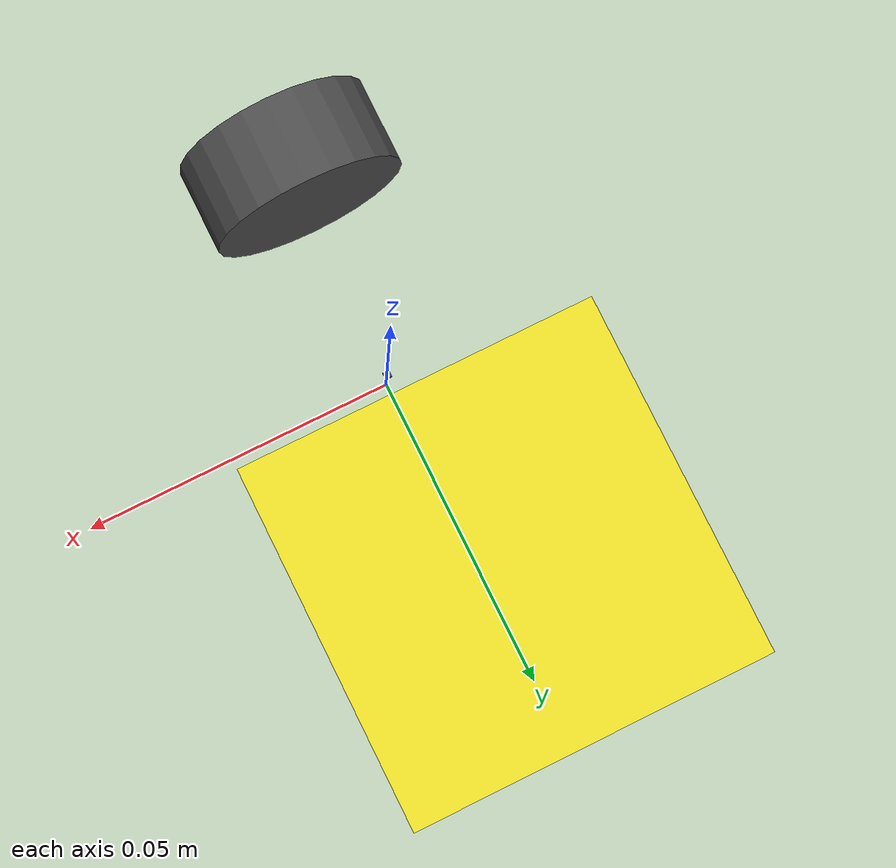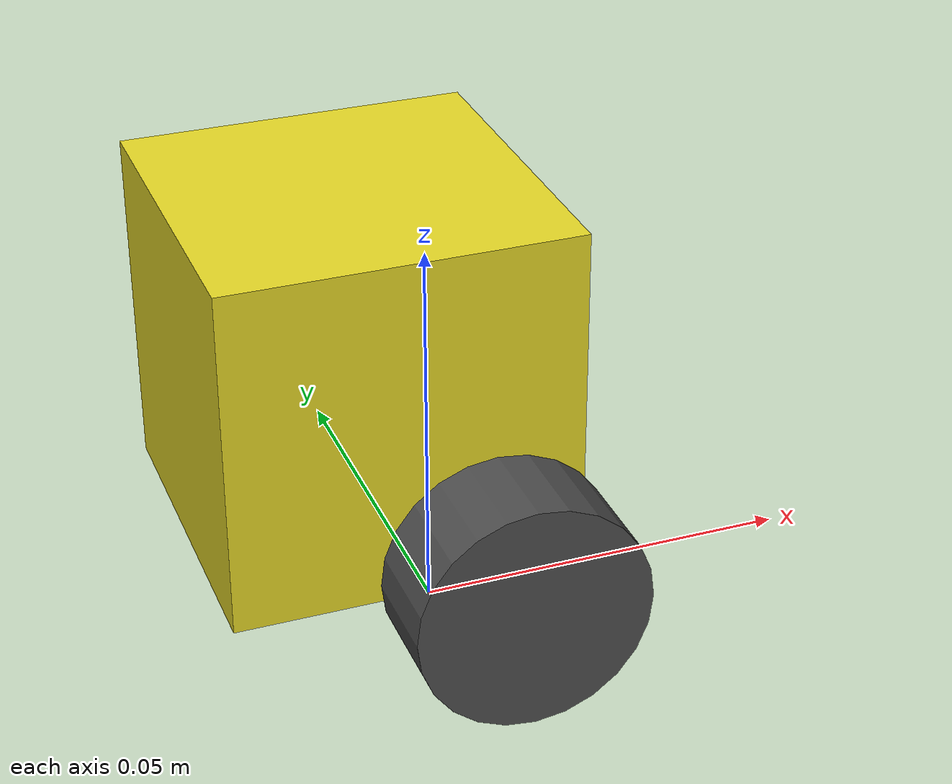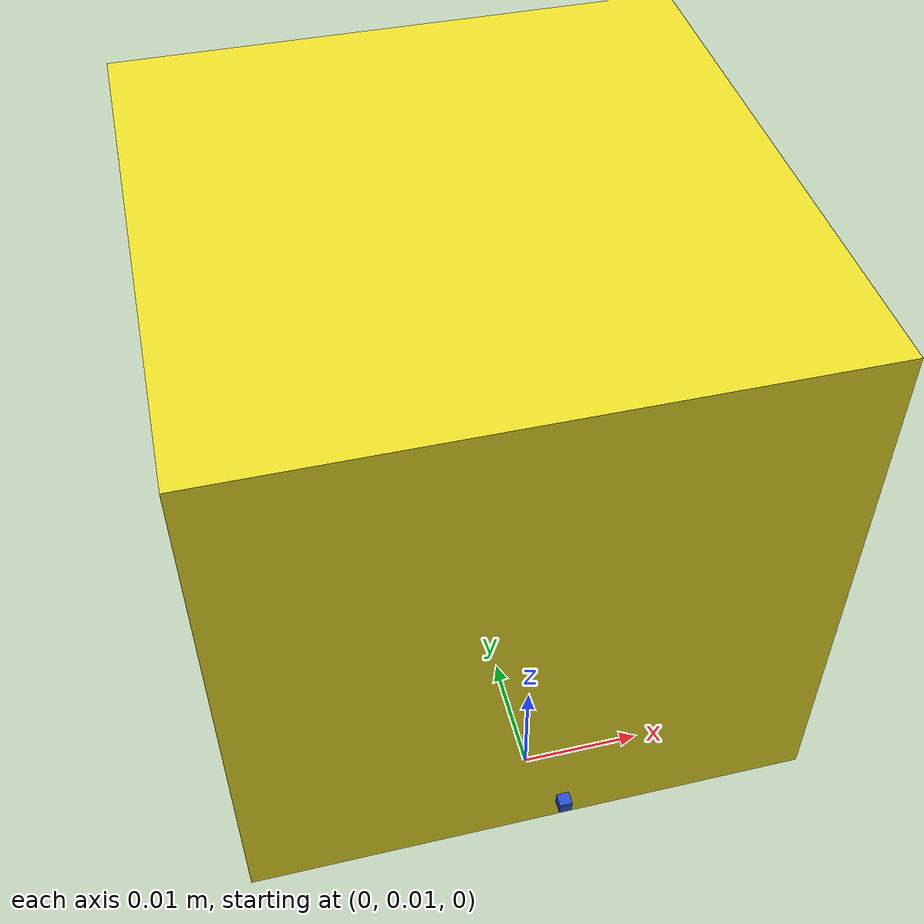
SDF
<?xml version='1.0'?>
<sdf version='1.6'>
    <model name='car'>
        <link name="center">
            <pose>0 0 0.01 0 0 0</pose>
            <inertial>
                <pose>0 0 0 0 0 0</pose>
                <mass>1e-20</mass>
                <inertia>
                    <ixx>1e-20</ixx>
                    <ixy>0</ixy>
                    <ixz>0</ixz>
                    <izz>1e-20</izz>
                    <iyz>0</iyz>
                    <iyy>1e-20</iyy>
                </inertia>
            </inertial>
            <visual name="visual">
                <pose>0 0 0 0 0 0</pose>
                <geometry>
                    <box>
                        <size>0.001 0.001 0.001</size>
                    </box>
                </geometry>
                <material>
                    <script>
                        <name>Gazebo/Blue</name>
                        <uri>file://media/materials/scripts/gazebo.material</uri>
                    </script>
                </material>
            </visual>
        </link>
        <link name='base'>
            <pose>0 0 0.005 0 0 0</pose>
            <inertial>
                <pose frame=''>0.0095 0.0 0.019 0 0 0</pose>
                <mass>0.5</mass>
                <inertia>
                    <ixx>2.8333e-4</ixx>
                    <ixy>0</ixy>
                    <ixz>0</ixz>
                    <izz>6.6570e-4</izz>
                    <iyz>0</iyz>
                    <iyy>4.6770e-4</iyy>
                </inertia>
            </inertial>
            <visual name='whole_robot_visual'>
                <pose>0 0.032 0.015 1.5707 0 0</pose>
                <geometry>
                    <box>
                        <size>0.05 0.05 0.05</size>
                    </box>
                </geometry>
                <material>
                    <script>
                        <name>Gazebo/Yellow</name>
                        <uri>file://media/materials/scripts/gazebo.material</uri>
                    </script>
                </material>
            </visual>
        </link>
        <link name='right_wheel'>
            <pose>0.0 -0.0313 0.021 0 1.57079 1.57079</pose>
            <inertial>
                <mass>0.01</mass>
                <inertia>
                    <ixx>6.96908333e-07</ixx>
                    <ixy>0</ixy>
                    <ixz>0</ixz>
                    <iyy>6.96908333e-07</iyy>
                    <iyz>0</iyz>
                    <izz>1.125e-06</izz>
                </inertia>
                <pose>0 0 0 0 0 0</pose>
            </inertial>
            <visual name='right_wheel_visual'>
                <pose>0 0 0 0 0 0</pose>
                <geometry>
                    <cylinder>
                        <radius>0.0145</radius>
                        <length>0.0127</length>
                    </cylinder>
                </geometry>
                <material>
                    <script>
                        <name>Gazebo/DarkGray</name>
                        <uri>file://media/materials/scripts/gazebo.material</uri>
                    </script>
                </material>
            </visual>
            <collision name='right_wheel_collision'>
                <pose>0 0 0 0 0 0</pose>
                <max_contacts>2</max_contacts>
                <geometry>
                    <cylinder>
                        <radius>0.0145</radius>
                        <length>0.0127</length>
                    </cylinder>
                </geometry>
                <surface>
                    <friction>
                        <ode>
                            <mu>0.32</mu>
                            <mu2>0.48</mu2>
                            <fdir1>0 0 1</fdir1>
                            <slip1>0</slip1>
                            <slip2>0</slip2> <!-- increases "drifting" -->
                        </ode>
                    </friction>
                    <contact>
                        <ode>
                            <soft_cfm>1.7e-10</soft_cfm>
                            <soft_erp>0.17</soft_erp>
                            <kp>1e9</kp>
                            <kd>5e10</kd>
                            <max_vel>0.01</max_vel>
                            <min_depth>0</min_depth>
                        </ode>
                    </contact>
                </surface>
            </collision>
        </link>
        <link name='left_wheel'>
            <pose>0.0 0.0313 0.021 0 1.57079 1.57079</pose>
            <inertial>
                <mass>0.01</mass>
                <inertia>
                    <ixx>6.96908333e-07</ixx>
                    <ixy>0</ixy>
                    <ixz>0</ixz>
                    <iyy>6.96908333e-07</iyy>
                    <iyz>0</iyz>
                    <izz>1.125e-06</izz>
                </inertia>
            </inertial>
            <visual name='left_wheel_visual'>
                <pose>0 0 0 0 0 0</pose>
                <geometry>
                    <cylinder>
                        <radius>0.0145</radius>
                        <length>0.0127</length>
                    </cylinder>
                </geometry>
                <material>
                    <script>
                        <name>Gazebo/DarkGray</name>
                        <uri>file://media/materials/scripts/gazebo.material</uri>
                    </script>
                </material>
            </visual>
            <collision name='left_wheel_collision'>
                <max_contacts>2</max_contacts>
                <pose>0 0 0 0 0 0</pose>
                <geometry>
                    <cylinder>
                        <radius>0.0145</radius>
                        <length>0.0127</length>
                    </cylinder>
                </geometry>
                <surface>
                    <friction>
                        <ode>
                            <mu>0.32</mu>
                            <mu2>0.48</mu2>
                            <fdir1>0 0 1</fdir1>
                            <slip1>0</slip1>
                            <slip2>0</slip2>
                        </ode>
                    </friction>
                    <contact>
                        <ode>
                            <soft_cfm>1.7e-10</soft_cfm>
                            <soft_erp>0.17</soft_erp>
                            <kp>1e9</kp>
                            <kd>5e10</kd>
                            <max_vel>0.01</max_vel>
                            <min_depth>0</min_depth>
                        </ode>
                    </contact>
                </surface>
            </collision>
        </link>
        <joint name='left_wheel_joint' type='revolute'>
            <parent>base</parent>
            <child>left_wheel</child>
            <pose>0 0 0 0 0 0</pose>
            <axis>
                <xyz>0 0 1</xyz>
                <limit>
                    <effort>0.016</effort> <!-- 16 kg-cm -->
                    <velocity>41.88</velocity> <!-- ~400 rpm -->
                </limit>
                <dynamics>
                    <damping>0.00058</damping>
                </dynamics>
            </axis>
            <physics>
                <ode>
                    <implicit_spring_damper>true</implicit_spring_damper>
                    <limit>
                        <cfm>0.0</cfm>
                        <erp>0.0</erp>
                    </limit>
                    <suspension>
                        <cfm>0.0</cfm>
                        <erp>0.0</erp>
                    </suspension>
                </ode>
            </physics>
        </joint>
        <joint name='right_wheel_joint' type='revolute'>
            <parent>base</parent>
            <child>right_wheel</child>
            <pose>0 0 0 0 0 0</pose>
            <axis>
                <xyz>0 0 1</xyz>
                <use_parent_model_frame>0</use_parent_model_frame>
                <limit>
                    <effort>0.016</effort> <!-- 16 kg-cm -->
                    <velocity>41.88</velocity> <!-- ~400 rpm -->
                </limit>
                <dynamics>
                    <damping>0.00058</damping>
                </dynamics>
            </axis>
            <physics>
                <ode>
                    <implicit_spring_damper>true</implicit_spring_damper>
                    <limit>
                        <cfm>0</cfm>
                        <erp>0.0</erp>
                    </limit>
                    <suspension>
                        <cfm>0</cfm>
                        <erp>0.0</erp>
                    </suspension>
                </ode>
            </physics>
        </joint>
        <joint name="center_joint" type="fixed">
            <parent>base</parent>
            <child>center</child>
            <pose>0 0 0 0 0 0</pose>
        </joint>
        <plugin name="car_plugin" filename="libcar_plugin.so">
            <left_wheel_joint>left_wheel_joint</left_wheel_joint>
            <right_wheel_joint>right_wheel_joint</right_wheel_joint>
            <link>center</link>
        </plugin>
    </model>
</sdf>
